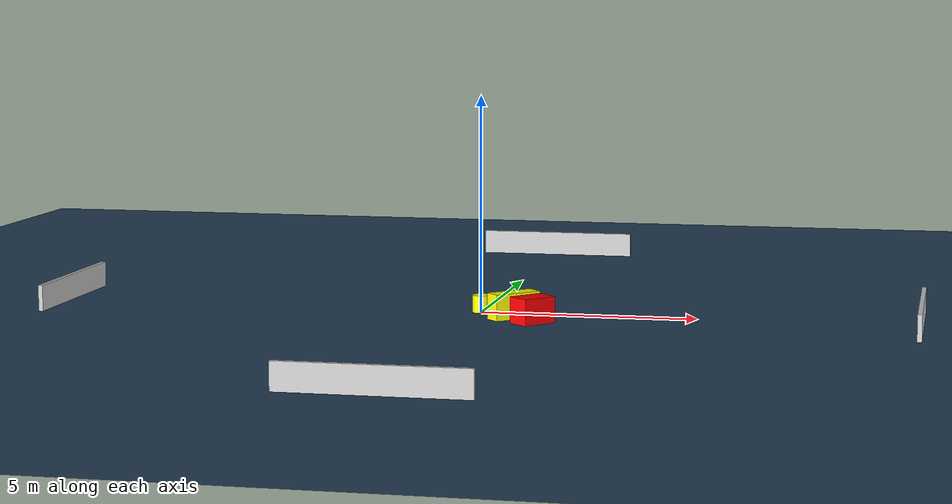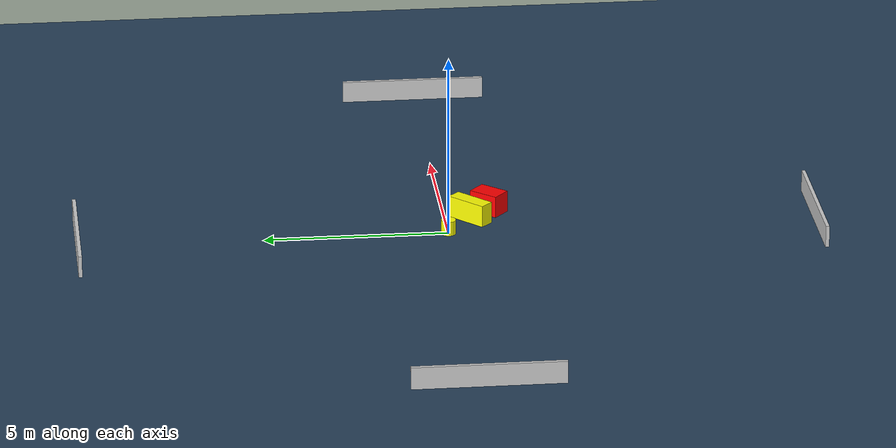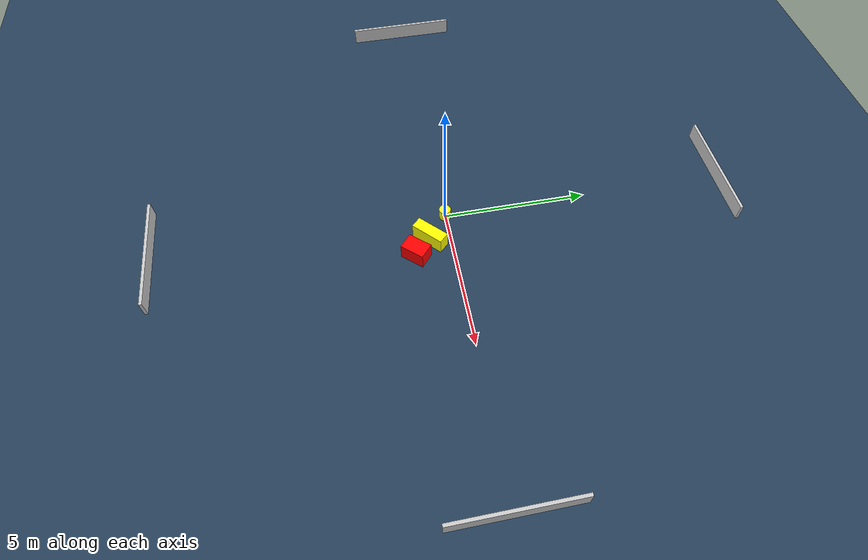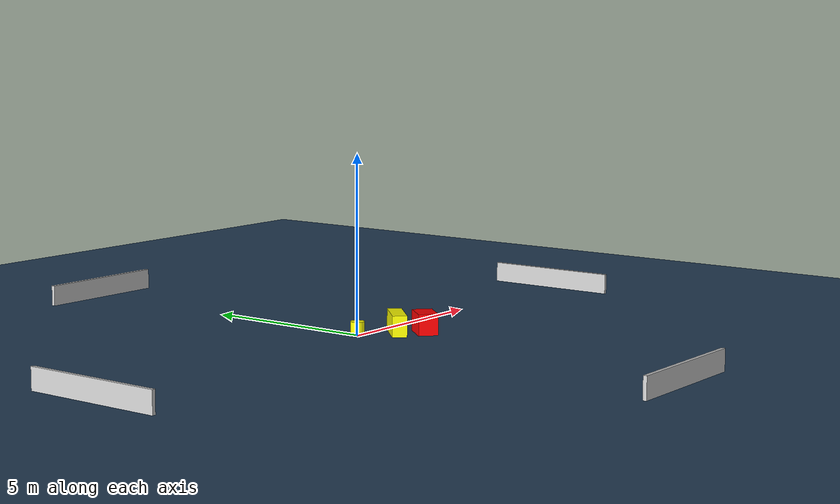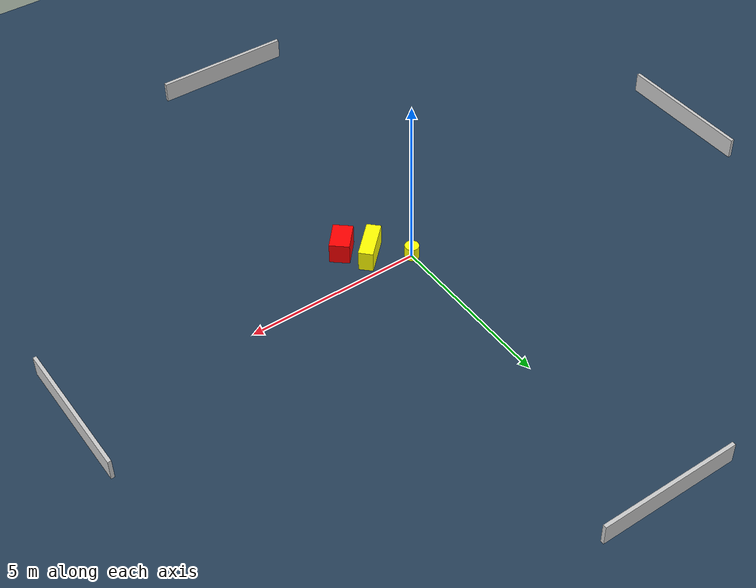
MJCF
<?xml version="1.0" ?>
<mujoco model="generated_environment">
  <option timestep="0.01" integrator="RK4" cone="elliptic"/>
  <default>
    <geom density="1"/>
  </default>
  <asset>
    <texture builtin="gradient" height="3072" name="skybox" rgb1="0.3 0.5 0.7" rgb2="0 0 0" type="skybox" width="512"/>
    <texture builtin="checker" height="300" name="groundplane" rgb1="0.2 0.3 0.4" rgb2="0.1 0.2 0.3" type="2d" width="300"/>
    <material name="groundplane" reflectance="0.2" texrepeat="5 5" texture="groundplane"/>
  </asset>
  <worldbody>
    <light dir="0 0 -1" directional="true" pos="0 0 1.5"/>
    <geom condim="3" friction="0.5 0.005 0.001" material="groundplane" name="floor" pos="0 0 0" size="0 0 0.05" type="plane"/>
    <body name="walls">
      <geom name="wall_1" condim="4" pos="-10.0 0.0 0.3" rgba="0.800000011920929 0.800000011920929 0.800000011920929 1.0" size="0.05 2.0 0.3" type="box"/>
      <geom name="wall_2" condim="4" pos="10.0 0.0 0.3" rgba="0.800000011920929 0.800000011920929 0.800000011920929 1.0" size="0.05 2.0 0.3" type="box"/>
      <geom name="wall_3" condim="4" pos="0.0 -10.0 0.3" rgba="0.800000011920929 0.800000011920929 0.800000011920929 1.0" size="2.0 0.05 0.3" type="box"/>
      <geom name="wall_4" condim="4" pos="0.0 10.0 0.3" rgba="0.800000011920929 0.800000011920929 0.800000011920929 1.0" size="2.0 0.05 0.3" type="box"/>
    </body>
    <body name="robot">
      <joint name="joint_x" type="slide" pos="0 0 0" axis="1 0 0"/>
      <joint name="joint_y" type="slide" pos="0 0 0" axis="0 1 0"/>
      <geom name="robot" type="cylinder" pos="0.0 0.0 0.2" size="0.2 0.2 0.0" mass="5.0" friction="1.0 0.005 0.0001" condim="4" rgba="1.0 1.0 0.0 1.0"/>
    </body>
    <body name="obstacle_1_movable">
      <geom name="obstacle_1_movable" condim="4" pos="0.8963773025968296 -0.686330150526286 0.3" euler="0 0 224.22109471942724" friction="0.0 0.005 0.001" rgba="1.0 1.0 0.0 1.0" size="0.5821759843659835 0.20259531752282878 0.3" type="box" mass="0.1"/>
      <joint type="free"/>
    </body>
    <body name="obstacle_2_static">
      <geom name="obstacle_2_static" condim="4" pos="1.4412035005908173 -1.2500383141323848 0.3" euler="0 0 138.7221871100214" friction="0.0 0.005 0.001" rgba="1.0 0.0 0.0 1.0" size="0.2791629202900325 0.420298902918047 0.3" type="box"/>
    </body>
  </worldbody>
  <actuator>
    <motor name="actuator_x" joint="joint_x" gear="1" ctrlrange="-1 1"/>
    <motor name="actuator_y" joint="joint_y" gear="1" ctrlrange="-1 1"/>
  </actuator>
</mujoco>
